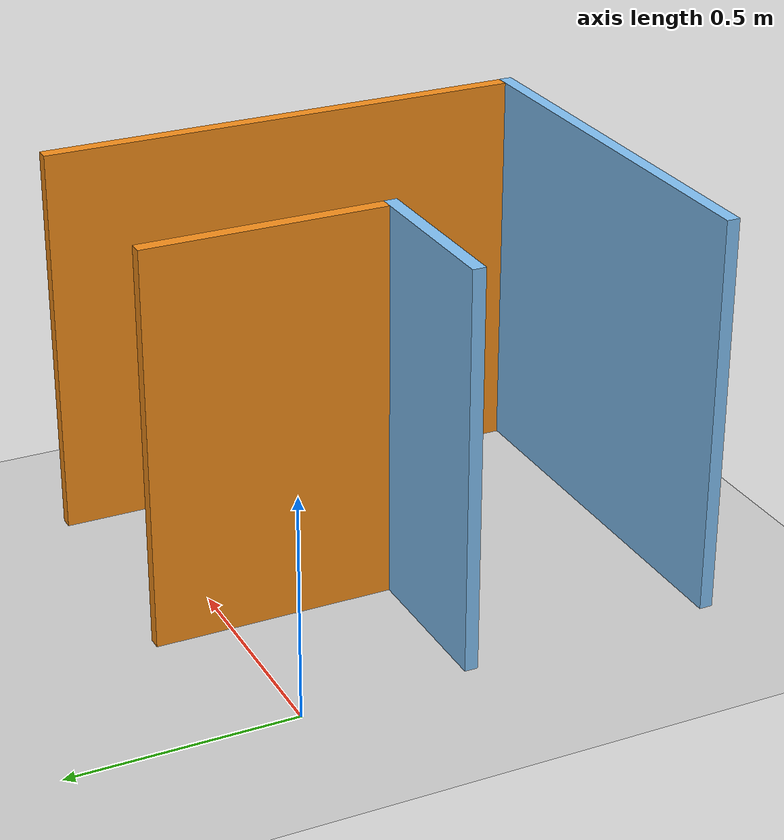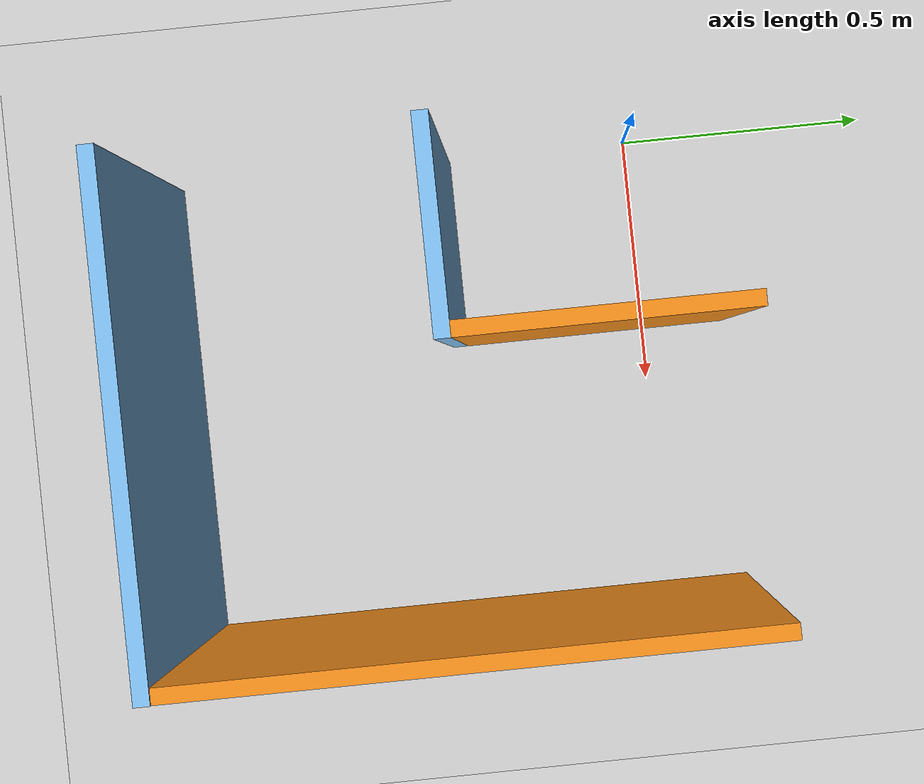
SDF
<sdf version="1.4">
 <world name="default">
  <light name="sun" type="directional">
   <cast_shadows>0</cast_shadows>
   <pose>-100 -100 5 0 -0 0</pose>
   <diffuse>0.8 0.8 0.8 1</diffuse>
   <specular>0.2 0.2 0.2 1</specular>
   <attenuation>
    <range>1000</range>
    <constant>0.9</constant>
    <linear>0.01</linear>
    <quadratic>0.001</quadratic>
   </attenuation>
   <direction>-0.5 0.1 -0.9</direction>
  </light>
  <model name="ground_plane">
   <static>1</static>
   <link name="link">
    <collision name="collision">
     <geometry><plane><normal>0 0 1</normal><size>10 10</size></plane></geometry>
     <surface>
      <friction><ode><mu>10000</mu><mu2>10000</mu2></ode><bullet><mu>10000</mu><mu2>10000</mu2></bullet></friction>
     </surface>
    </collision>
    <visual name="visual">
     <cast_shadows>0</cast_shadows>
     <geometry><plane><normal>0 0 1</normal><size>3 3</size></plane></geometry>
     <material>
      <script><uri>file://media/materials/scripts/gazebo.material</uri><name>Gazebo/Grey</name></script>
     </material>
    </visual>
    <velocity_decay><linear>0</linear><angular>0</angular></velocity_decay>
   </link>
  </model>
  <model name="inner_x_wall">
   <pose>0.202 -0.385 0 0 -0 0</pose>
   <link name="inner_wall_x">
    <collision name="inner_x_wall_Collision">
     <pose>0 0 0.45 0 -0 0</pose>
     <geometry><box><size>0.39 0.03 0.9</size></box></geometry>
     <surface><friction><ode><mu>10000</mu><mu2>10000</mu2></ode></friction></surface>
    </collision>
    <visual name="inner_x_wall_Visual">
     <cast_shadows>0</cast_shadows>
     <pose>0 0 0.45 0 -0 0</pose>
     <geometry><box><size>0.39 0.03 0.9</size></box></geometry>
     <material><script><name>Gazebo/SkyBlue</name></script></material>
    </visual>
   </link>
   <static>1</static>
  </model>
  <model name="inner_y_wall">
   <pose>0.382 -0.1 0 0 -0 0</pose>
   <link name="inner_wall_y">
    <collision name="inner_y_wall_Collision">
     <pose>0 0 0.45 0 -0 0</pose>
     <geometry><box><size>0.03 0.54 0.9</size></box></geometry>
     <surface><friction><ode><mu>10000</mu><mu2>10000</mu2></ode></friction></surface>
    </collision>
    <visual name="inner_y_wall_Visual">
     <cast_shadows>0</cast_shadows>
     <pose>0 0 0.45 0 -0 0</pose>
     <geometry><box><size>0.03 0.54 0.9</size></box></geometry>
     <material><script><name>Gazebo/Orange</name></script></material>
    </visual>
   </link>
   <static>1</static>
  </model>
  <model name="outer_x_wall">
   <pose>0.488 -0.955 0 0 -0 0</pose>
   <link name="outer_wall_x">
    <collision name="outer_x_wall_Collision">
     <pose>0 0 0.45 0 -0 0</pose>
     <geometry><box><size>0.96 0.03 0.9</size></box></geometry>
     <surface><friction><ode><mu>10000</mu><mu2>10000</mu2></ode></friction></surface>
    </collision>
    <visual name="outer_x_wall_Visual">
     <cast_shadows>0</cast_shadows>
     <pose>0 0 0.45 0 -0 0</pose>
     <geometry><box><size>0.96 0.03 0.9</size></box></geometry>
     <material><script><name>Gazebo/SkyBlue</name></script></material>
    </visual>
   </link>
   <static>1</static>
  </model>
  <model name="outer_y_wall">
   <pose>0.952 -0.384 0 0 -0 0</pose>
   <link name="outer_wall_y">
    <collision name="outer_y_wall_Collision">
     <pose>0 0 0.45 0 -0 0</pose>
     <geometry><box><size>0.03 1.11 0.9</size></box></geometry>
     <surface><friction><ode><mu>10000</mu><mu2>10000</mu2></ode></friction></surface>
    </collision>
    <visual name="outer_y_wall_Visual">
     <cast_shadows>0</cast_shadows>
     <pose>0 0 0.45 0 -0 0</pose>
     <geometry><box><size>0.03 1.11 0.9</size></box></geometry>
     <material><script><name>Gazebo/Orange</name></script></material>
    </visual>
   </link>
   <static>1</static>
  </model>
  <physics type="ode">
   <simbody>
    <accuracy>0.005</accuracy>
    <max_transient_velocity>0.005</max_transient_velocity>
    <contact><stiffness>1e8</stiffness><dissipation>20.0</dissipation></contact>
   </simbody>
   <ode><solver><iters>250</iters></solver></ode>
   <max_step_size>0.001</max_step_size>
   <real_time_factor>1</real_time_factor>
   <real_time_update_rate>1000</real_time_update_rate>
   <gravity>0 0 -9.8</gravity>
  </physics>
  <scene>
   <ambient>0.4 0.4 0.4 1</ambient>
   <background>0.7 0.7 0.7 1</background>
   <shadows>0</shadows>
   <sky><clouds><speed>1</speed></clouds></sky>
  </scene>
  <spherical_coordinates>
   <surface_model>EARTH_WGS84</surface_model>
   <latitude_deg>0</latitude_deg>
   <longitude_deg>0</longitude_deg>
   <elevation>0</elevation>
   <heading_deg>0</heading_deg>
  </spherical_coordinates>
 </world>
</sdf>
